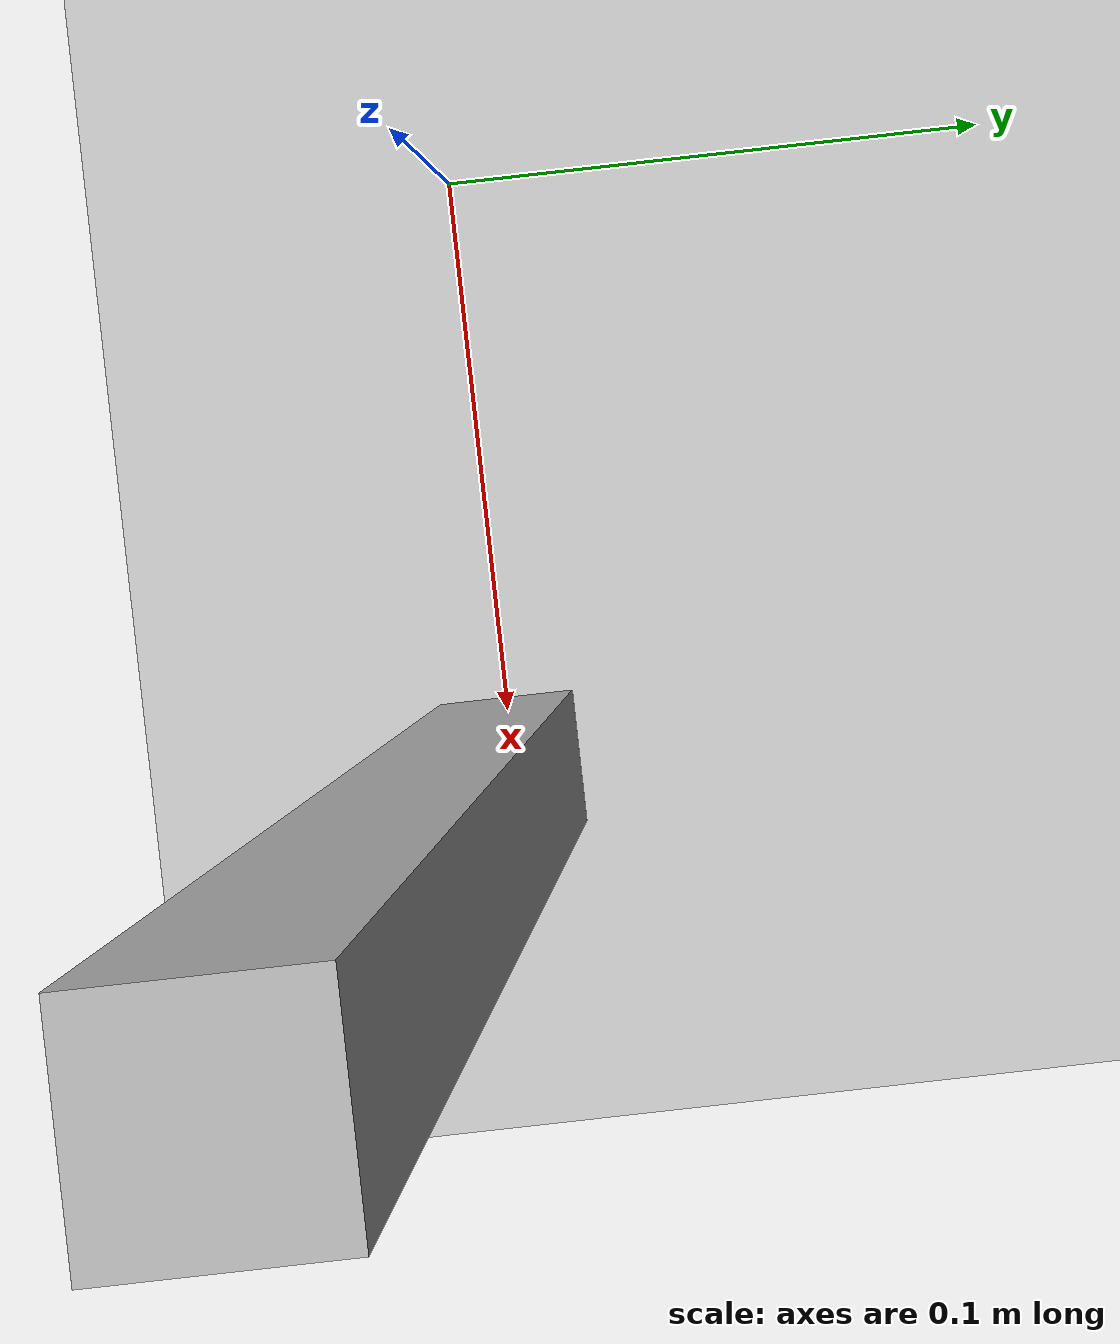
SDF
<?xml version="1.0"?>
<sdf version="1.6">
  <world name="default">

    <physics type="dart">
      <real_time_update_rate>0.000000</real_time_update_rate>
    </physics>

    <include>
      <uri>model://ground_plane</uri>
    </include>

    <include>
      <uri>model://sun</uri>
    </include>

    <model name="custom_box">
      <pose>0.11 0 0.175 0 0 0</pose>
      <link name="link">

        <inertial>
          <mass>0.05</mass>
          <inertia>
            <ixx>0.0083</ixx>
            <ixy>0.0</ixy>
            <ixz>0.0</ixz>
            <iyy>0.0083</iyy>
            <iyz>0.0</iyz>
            <izz>0.0083</izz>
          </inertia>
        </inertial>

        <collision name="box_collision">
          <geometry>
            <box>
              <size>0.025 0.025 0.35</size>
            </box>
          </geometry>
        </collision>

        <visual name="visual">
          <geometry>
            <box>
              <size>0.025 0.025 0.35</size>
            </box>
          </geometry>
        </visual>
      </link>

      <!-- Grasp target plugin -->
      <plugin name="target_plugin" filename="libTargetPlugin.so">
      </plugin>

    </model>
  </world>
</sdf>
